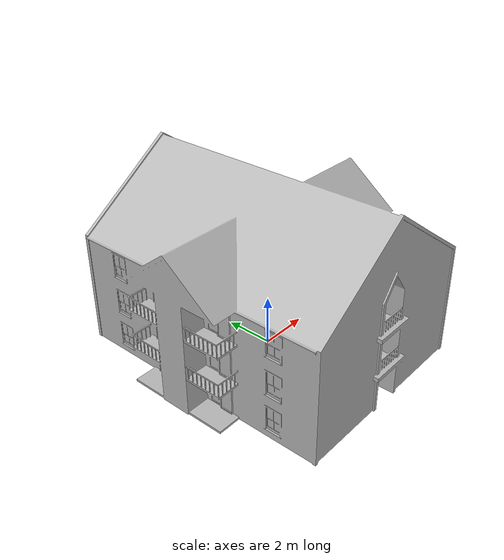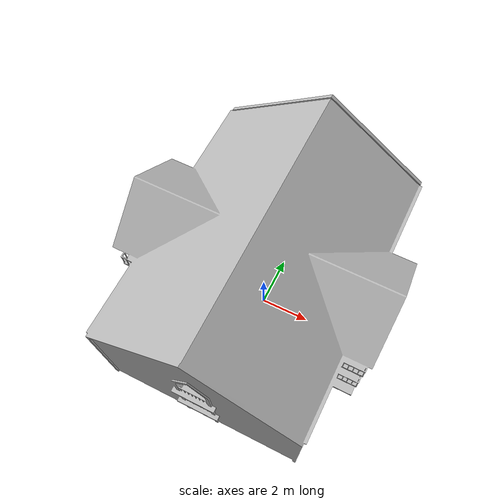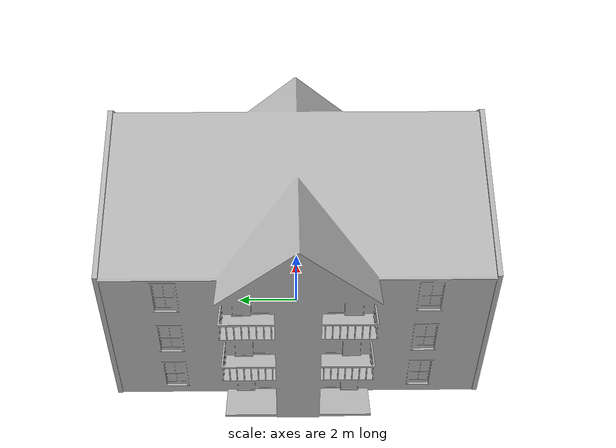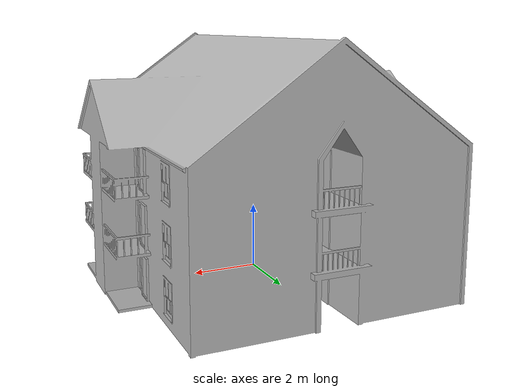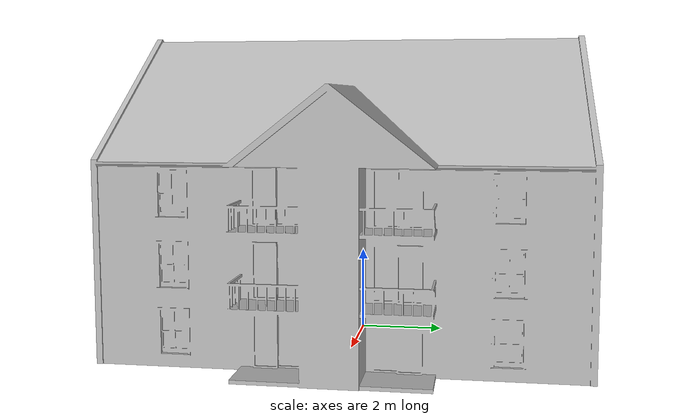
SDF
<?xml version="1.0" ?>
<sdf version="1.6">
  <model name="apartment">
    <static>true</static>
    <link name="link">
      <collision name="collision">
        <geometry>
          <mesh>
            <uri>model://apartment/meshes/apartment.dae</uri>
            <scale>0.5 0.5 0.5</scale>
          </mesh>
        </geometry>
      </collision>
      <visual name="visual">
        <geometry>
          <mesh>
            <uri>model://apartment/meshes/apartment.dae</uri>
            <scale>0.5 0.5 0.5</scale>
          </mesh>
        </geometry>
      </visual>
    </link>
  </model>
</sdf>
